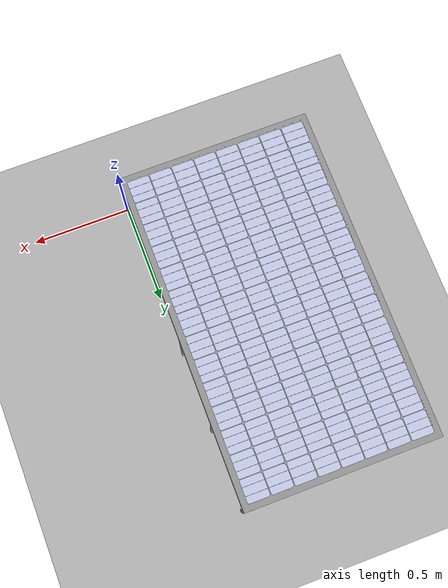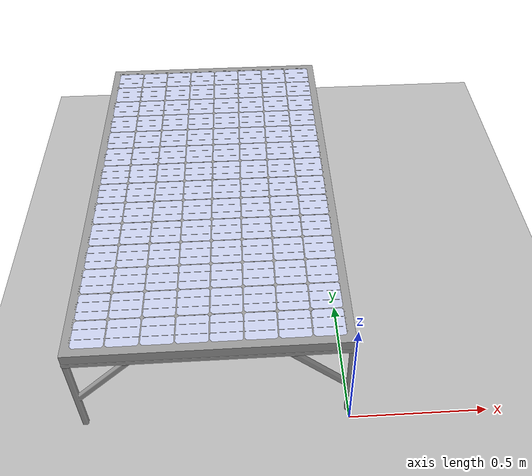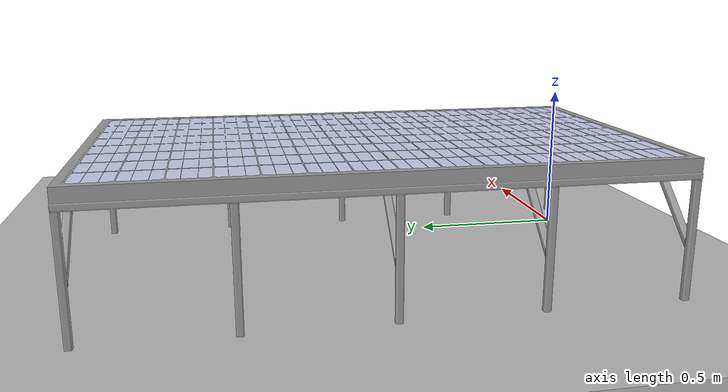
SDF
<sdf version="1.7">
 <world name="default">
  <light name="sun" type="directional">
   <pose>0 0 10 0 -0 0</pose>
   <diffuse>0.8 0.8 0.8 1</diffuse>
   <specular>0.2 0.2 0.2 1</specular>
   <attenuation>
    <range>1000</range>
    <constant>0.9</constant>
    <linear>0.01</linear>
    <quadratic>0.001</quadratic>
   </attenuation>
   <direction>-0.5 0.1 -0.9</direction>
   <spot><inner_angle>0</inner_angle><outer_angle>0</outer_angle><falloff>0</falloff></spot>
  </light>
  <gravity>0 0 -9.8</gravity>
  <magnetic_field>6e-06 2.3e-05 -4.2e-05</magnetic_field>
  <atmosphere type="adiabatic"/>
  <physics type="ode">
   <max_step_size>0.001</max_step_size>
   <real_time_factor>1</real_time_factor>
   <real_time_update_rate>1000</real_time_update_rate>
  </physics>
  <scene><ambient>0.4 0.4 0.4 1</ambient><background>0.7 0.7 0.7 1</background><shadows>1</shadows></scene>
  <spherical_coordinates>
   <surface_model>EARTH_WGS84</surface_model>
   <latitude_deg>0</latitude_deg>
   <longitude_deg>0</longitude_deg>
   <elevation>0</elevation>
   <heading_deg>0</heading_deg>
  </spherical_coordinates>
  <model name="solar-panel">
   <link name="link_0">
    <inertial>
     <mass>1</mass>
     <inertia>
      <ixx>0.166667</ixx>
      <ixy>0</ixy>
      <ixz>0</ixz>
      <iyy>0.166667</iyy>
      <iyz>0</iyz>
      <izz>0.166667</izz>
     </inertia>
    </inertial>
    <pose>0 0 0 0 -0 1.5708</pose>
    <visual name="visual">
     <geometry>
      <mesh>
       <uri>/home/juanmadrid/catkin_ws/src/panel-cleaner_description/world/Panel- Estructura_Panel.STL</uri>
       <scale>1 1 1</scale>
      </mesh>
     </geometry>
     <material>
      <lighting>1</lighting>
      <script><uri>file://media/materials/scripts/gazebo.material</uri><name>Gazebo/Grey</name></script>
      <shader type="pixel"><normal_map>__default__</normal_map></shader>
      <ambient>0.3 0.3 0.3 1</ambient>
      <diffuse>0.7 0.7 0.7 1</diffuse>
      <specular>0.01 0.01 0.01 1</specular>
      <emissive>0 0 0 1</emissive>
     </material>
    </visual>
    <collision name="collision">
     <geometry>
      <mesh>
       <uri>/home/juanmadrid/catkin_ws/src/panel-cleaner_description/world/Panel- Estructura_Panel.STL</uri>
       <scale>1 1 1</scale>
      </mesh>
     </geometry>
     <surface>
      <friction>
       <ode><mu>1</mu><mu2>1</mu2><fdir1>0 0 0</fdir1><slip1>0</slip1><slip2>0</slip2></ode>
       <torsional>
        <coefficient>1</coefficient>
        <patch_radius>0</patch_radius>
        <surface_radius>0</surface_radius>
        <use_patch_radius>1</use_patch_radius>
        <ode><slip>0</slip></ode>
       </torsional>
      </friction>
      <bounce><restitution_coefficient>0</restitution_coefficient><threshold>1e+06</threshold></bounce>
      <contact>
       <collide_without_contact>0</collide_without_contact>
       <collide_without_contact_bitmask>1</collide_without_contact_bitmask>
       <collide_bitmask>1</collide_bitmask>
       <ode>
        <soft_cfm>0</soft_cfm>
        <soft_erp>0.2</soft_erp>
        <kp>1e+13</kp>
        <kd>1</kd>
        <max_vel>0.01</max_vel>
        <min_depth>0</min_depth>
       </ode>
       <bullet>
        <split_impulse>1</split_impulse>
        <split_impulse_penetration_threshold>-0.01</split_impulse_penetration_threshold>
        <soft_cfm>0</soft_cfm>
        <soft_erp>0.2</soft_erp>
        <kp>1e+13</kp>
        <kd>1</kd>
       </bullet>
      </contact>
     </surface>
    </collision>
   </link>
   <link name="link_1">
    <inertial>
     <mass>1</mass>
     <inertia>
      <ixx>0.166667</ixx>
      <ixy>0</ixy>
      <ixz>0</ixz>
      <iyy>0.166667</iyy>
      <iyz>0</iyz>
      <izz>0.166667</izz>
     </inertia>
    </inertial>
    <pose>0 0 0 0 -0 1.5708</pose>
    <visual name="visual">
     <geometry>
      <mesh>
       <uri>/home/juanmadrid/catkin_ws/src/panel-cleaner_description/world/Panel- panel_blanco.STL</uri>
       <scale>1 1 1</scale>
      </mesh>
     </geometry>
     <material>
      <lighting>1</lighting>
      <script><uri>file://media/materials/scripts/gazebo.material</uri><name>Gazebo/Grey</name></script>
      <shader type="pixel"><normal_map>__default__</normal_map></shader>
      <ambient>1 1 1 1</ambient>
      <diffuse>1 1 1 1</diffuse>
      <specular>0 0 0 1</specular>
      <emissive>1 1 1 1</emissive>
     </material>
    </visual>
    <collision name="collision">
     <geometry>
      <mesh>
       <uri>/home/juanmadrid/catkin_ws/src/panel-cleaner_description/world/Panel- panel_blanco.STL</uri>
       <scale>1 1 1</scale>
      </mesh>
     </geometry>
     <surface>
      <friction>
       <ode><mu>1</mu><mu2>1</mu2><fdir1>0 0 0</fdir1><slip1>0</slip1><slip2>0</slip2></ode>
       <torsional>
        <coefficient>1</coefficient>
        <patch_radius>0</patch_radius>
        <surface_radius>0</surface_radius>
        <use_patch_radius>1</use_patch_radius>
        <ode><slip>0</slip></ode>
       </torsional>
      </friction>
      <bounce><restitution_coefficient>0</restitution_coefficient><threshold>1e+06</threshold></bounce>
      <contact>
       <collide_without_contact>0</collide_without_contact>
       <collide_without_contact_bitmask>1</collide_without_contact_bitmask>
       <collide_bitmask>1</collide_bitmask>
       <ode>
        <soft_cfm>0</soft_cfm>
        <soft_erp>0.2</soft_erp>
        <kp>1e+13</kp>
        <kd>1</kd>
        <max_vel>0.01</max_vel>
        <min_depth>0</min_depth>
       </ode>
       <bullet>
        <split_impulse>1</split_impulse>
        <split_impulse_penetration_threshold>-0.01</split_impulse_penetration_threshold>
        <soft_cfm>0</soft_cfm>
        <soft_erp>0.2</soft_erp>
        <kp>1e+13</kp>
        <kd>1</kd>
       </bullet>
      </contact>
     </surface>
    </collision>
   </link>
   <link name="link_2">
    <inertial>
     <mass>1</mass>
     <inertia>
      <ixx>0.166667</ixx>
      <ixy>0</ixy>
      <ixz>0</ixz>
      <iyy>0.166667</iyy>
      <iyz>0</iyz>
      <izz>0.166667</izz>
     </inertia>
    </inertial>
    <pose>0 0 0 0 -0 1.5708</pose>
    <visual name="visual">
     <geometry>
      <mesh>
       <uri>/home/juanmadrid/catkin_ws/src/panel-cleaner_description/world/Panel - panel_azul.STL</uri>
       <scale>1 1 1</scale>
      </mesh>
     </geometry>
     <material>
      <lighting>1</lighting>
      <script><uri>file://media/materials/scripts/gazebo.material</uri><name>Gazebo/Grey</name></script>
      <shader type="pixel"><normal_map>__default__</normal_map></shader>
      <ambient>0 0 0.933 1</ambient>
      <diffuse>0.792 0.819 0.933 1</diffuse>
      <specular>0.792 0.819 0.933 1</specular>
      <emissive>0 0 0 1</emissive>
     </material>
    </visual>
    <collision name="collision">
     <geometry>
      <mesh>
       <uri>/home/juanmadrid/catkin_ws/src/panel-cleaner_description/world/Panel - panel_azul.STL</uri>
       <scale>1 1 1</scale>
      </mesh>
     </geometry>
     <surface>
      <friction>
       <ode><mu>1</mu><mu2>1</mu2><fdir1>0 0 0</fdir1><slip1>0</slip1><slip2>0</slip2></ode>
       <torsional>
        <coefficient>1</coefficient>
        <patch_radius>0</patch_radius>
        <surface_radius>0</surface_radius>
        <use_patch_radius>1</use_patch_radius>
        <ode><slip>0</slip></ode>
       </torsional>
      </friction>
      <bounce><restitution_coefficient>0</restitution_coefficient><threshold>1e+06</threshold></bounce>
      <contact>
       <collide_without_contact>0</collide_without_contact>
       <collide_without_contact_bitmask>1</collide_without_contact_bitmask>
       <collide_bitmask>1</collide_bitmask>
       <ode>
        <soft_cfm>0</soft_cfm>
        <soft_erp>0.2</soft_erp>
        <kp>1e+13</kp>
        <kd>1</kd>
        <max_vel>0.01</max_vel>
        <min_depth>0</min_depth>
       </ode>
       <bullet>
        <split_impulse>1</split_impulse>
        <split_impulse_penetration_threshold>-0.01</split_impulse_penetration_threshold>
        <soft_cfm>0</soft_cfm>
        <soft_erp>0.2</soft_erp>
        <kp>1e+13</kp>
        <kd>1</kd>
       </bullet>
      </contact>
     </surface>
    </collision>
   </link>
   <static>1</static>
  </model>
  <model name="Pasto">
   <static>1</static>
   <link name="link_12">
    <collision name="collision"><geometry><box><size>20 20 0.1</size></box></geometry></collision>
    <visual name="visual">
     <cast_shadows>0</cast_shadows>
     <geometry><box><size>20 20 0.1</size></box></geometry>
     <material>
      <script>
       <uri>/home/juanmadrid/catkin_ws/src/panel-cleaner_description/models/Pasto/materials/scripts</uri>
       <uri>/home/juanmadrid/catkin_ws/src/panel-cleaner_description/models/Pasto/materials/textures</uri>
       <name>PastoMaterial/Image</name>
      </script>
     </material>
    </visual>
   </link>
  </model>
 </world>
</sdf>
